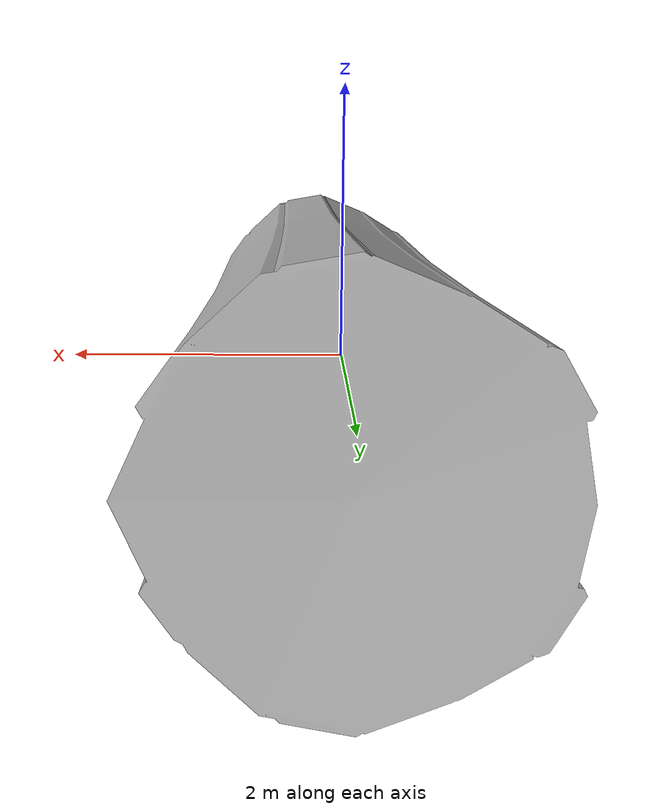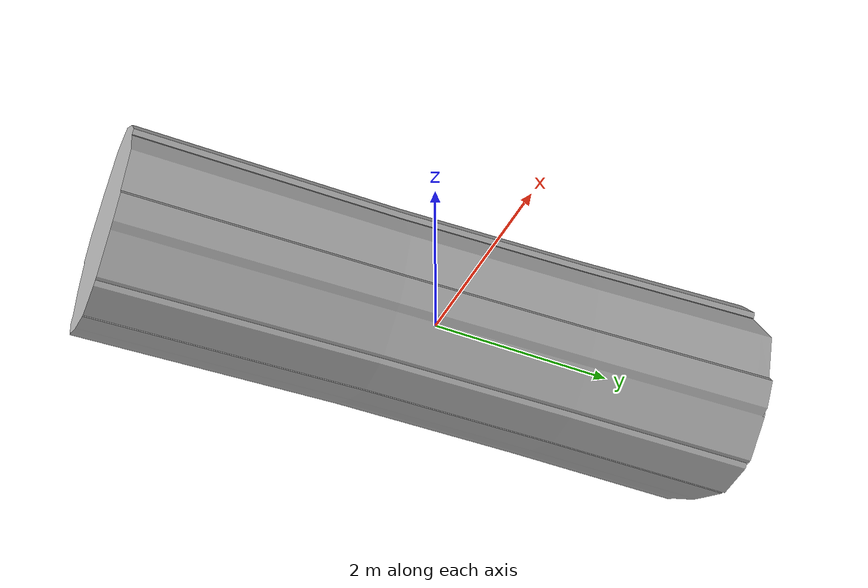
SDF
<?xml version="1.0" ?>
<sdf version="1.6">
  <model name="trunk2_buoy">
    <link name="link">
      <inertial>
        <pose>0 0 -2 0 0 0</pose>
        <!-- Mass determined based on buoyancy geometry so object
             floats at mid-point of sphere -->
        <mass>20</mass>
        <!-- Mark only - based on cylinder -->
        <inertia>
          <ixx>1.0</ixx>
          <ixy>0</ixy>
          <ixz>0</ixz>
          <iyy>1.0</iyy>
          <iyz>0</iyz>
          <izz>0.1</izz>
        </inertia>
      </inertial>
      <collision name="trunk_collision">
        <pose>0 0 0 1.57 0 0</pose>
        <geometry>
          <cylinder>
	    <radius>1</radius>
	    <length>7</length>
          </cylinder>
        </geometry>
      </collision>
      <visual name="trunk_visual">
        <geometry>
	        <mesh><uri>model://trunk2_buoy/meshes/trunk2.dae</uri></mesh>
        </geometry>
      </visual>
    </link>

    <plugin name="TrunkBuoyancyPlugin" filename="libbuoyancy_gazebo_plugin.so">
      <wave_model>ocean_waves</wave_model>
      <fluid_density>1000</fluid_density>
      <fluid_level>0.0</fluid_level>
      <linear_drag>25.0</linear_drag>
      <angular_drag>2.0</angular_drag>
      <buoyancy name="buoyancy_sphere">
        <link_name>link</link_name>
        <pose>0 0 0.2 0 0 0</pose>
        <geometry>
          <sphere>
            <radius>0.325</radius>
          </sphere>
        </geometry>
      </buoyancy>
    </plugin>

  </model>
</sdf>
